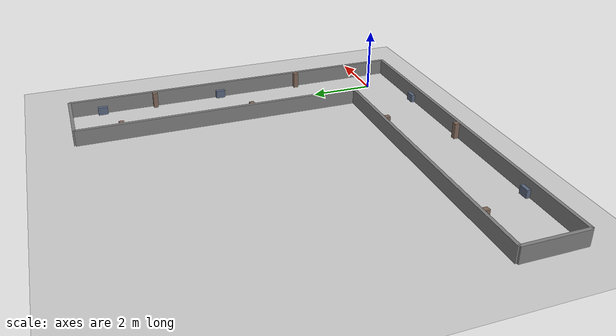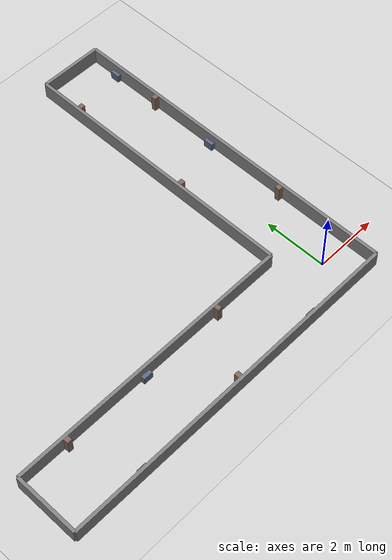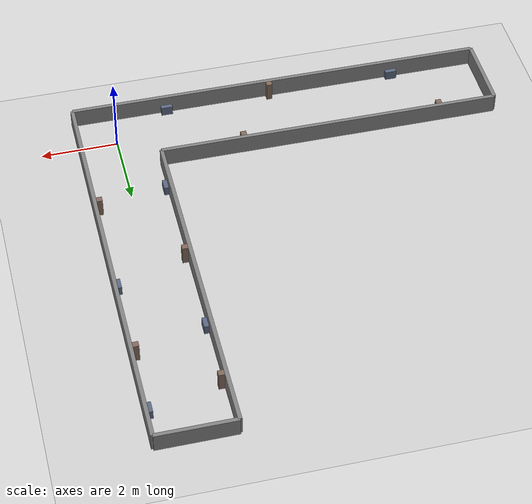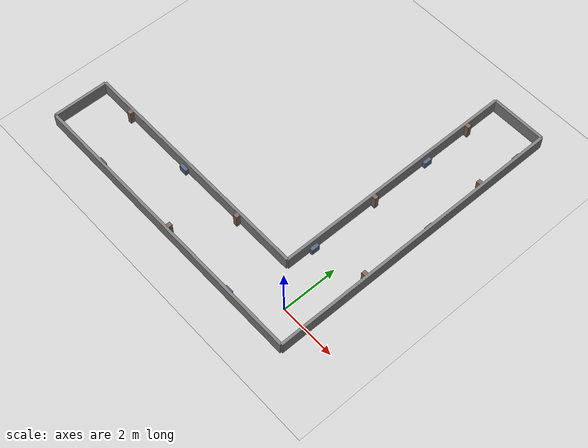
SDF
<?xml version="1.0" ?>
<sdf version="1.6">
  <world name="default">
    <plugin filename="libignition-gazebo-physics-system.so" name="ignition::gazebo::systems::Physics"/>
    <plugin filename="libignition-gazebo-user-commands-system.so" name="ignition::gazebo::systems::UserCommands"/>
    <plugin filename="libignition-gazebo-scene-broadcaster-system.so" name="ignition::gazebo::systems::SceneBroadcaster"/>
    <plugin filename="libignition-gazebo-imu-system.so" name="ignition::gazebo::systems::Imu"/>
    <plugin filename="libignition-gazebo-sensors-system.so" name="ignition::gazebo::systems::Sensors">
      <render_engine>ogre2</render_engine>
    </plugin>

    <light name="sun" type="directional">
      <pose>0 0 10 0 0.5 0</pose>
      <diffuse>1 1 1 1</diffuse>
      <specular>1 1 1 1</specular>
      <direction>-1 -1 -1</direction>
      <cast_shadows>true</cast_shadows>
    </light>

    <model name="ground_plane">
      <static>true</static>
      <link name="link">
        <collision name="collision">
          <geometry><plane><normal>0 0 1</normal><size>50 50</size></plane></geometry>
          <surface><friction><ode><mu>100</mu><mu2>50</mu2></ode></friction></surface>
        </collision>
        <visual name="visual">
          <geometry><plane><normal>0 0 1</normal><size>50 50</size></plane></geometry>
          <material>
            <ambient>0.8 0.8 0.8 1</ambient>
            <diffuse>0.8 0.8 0.8 1</diffuse>
            <specular>0.1 0.1 0.1 1</specular>
          </material>
        </visual>
      </link>
    </model>

    <!-- BOTTOM WALL: y=-1, full width from x=-10 to x=+1 -->
    <model name="wall_bottom">
      <static>true</static>
      <pose>-4.5 -1.0 0.25 0 0 0</pose>
      <link name="link">
        <collision name="collision">
          <geometry><box><size>11.0 0.1 0.5</size></box></geometry>
        </collision>
        <visual name="visual">
          <geometry><box><size>11.0 0.1 0.5</size></box></geometry>
          <material>
            <ambient>0.3 0.3 0.3 1</ambient>
            <diffuse>0.5 0.5 0.5 1</diffuse>
            <specular>0.1 0.1 0.1 1</specular>
          </material>
        </visual>
      </link>
    </model>

    <!-- RIGHT WALL: x=+1, full height from y=-1 to y=+10 -->
    <model name="wall_right">
      <static>true</static>
      <pose>1.0 4.5 0.25 0 0 0</pose>
      <link name="link">
        <collision name="collision">
          <geometry><box><size>0.1 11.0 0.5</size></box></geometry>
        </collision>
        <visual name="visual">
          <geometry><box><size>0.1 11.0 0.5</size></box></geometry>
          <material>
            <ambient>0.3 0.3 0.3 1</ambient>
            <diffuse>0.5 0.5 0.5 1</diffuse>
            <specular>0.1 0.1 0.1 1</specular>
          </material>
        </visual>
      </link>
    </model>

    <!-- TOP-LEFT WALL: y=+1, from x=-10 to x=-1 (outer wall of horiz leg, stops at inner corner) -->
    <model name="wall_top_left">
      <static>true</static>
      <pose>-5.5 1.0 0.25 0 0 0</pose>
      <link name="link">
        <collision name="collision">
          <geometry><box><size>9.0 0.1 0.5</size></box></geometry>
        </collision>
        <visual name="visual">
          <geometry><box><size>9.0 0.1 0.5</size></box></geometry>
          <material>
            <ambient>0.3 0.3 0.3 1</ambient>
            <diffuse>0.5 0.5 0.5 1</diffuse>
            <specular>0.1 0.1 0.1 1</specular>
          </material>
        </visual>
      </link>
    </model>

    <!-- LEFT-UPPER WALL: x=-1, from y=+1 to y=+10 (inner wall of vert leg, starts at inner corner) -->
    <model name="wall_left_upper">
      <static>true</static>
      <pose>-1.0 5.5 0.25 0 0 0</pose>
      <link name="link">
        <collision name="collision">
          <geometry><box><size>0.1 9.0 0.5</size></box></geometry>
        </collision>
        <visual name="visual">
          <geometry><box><size>0.1 9.0 0.5</size></box></geometry>
          <material>
            <ambient>0.3 0.3 0.3 1</ambient>
            <diffuse>0.5 0.5 0.5 1</diffuse>
            <specular>0.1 0.1 0.1 1</specular>
          </material>
        </visual>
      </link>
    </model>

    <!-- WEST END CAP: x=-10, from y=-1 to y=+1 -->
    <model name="wall_west">
      <static>true</static>
      <pose>-10.0 0 0.25 0 0 0</pose>
      <link name="link">
        <collision name="collision">
          <geometry><box><size>0.1 2.0 0.5</size></box></geometry>
        </collision>
        <visual name="visual">
          <geometry><box><size>0.1 2.0 0.5</size></box></geometry>
          <material>
            <ambient>0.3 0.3 0.3 1</ambient>
            <diffuse>0.5 0.5 0.5 1</diffuse>
            <specular>0.1 0.1 0.1 1</specular>
          </material>
        </visual>
      </link>
    </model>

    <!-- NORTH END CAP: y=+10, from x=-1 to x=+1 -->
    <model name="wall_north_end">
      <static>true</static>
      <pose>0 10.0 0.25 0 0 0</pose>
      <link name="link">
        <collision name="collision">
          <geometry><box><size>2.0 0.1 0.5</size></box></geometry>
        </collision>
        <visual name="visual">
          <geometry><box><size>2.0 0.1 0.5</size></box></geometry>
          <material>
            <ambient>0.3 0.3 0.3 1</ambient>
            <diffuse>0.5 0.5 0.5 1</diffuse>
            <specular>0.1 0.1 0.1 1</specular>
          </material>
        </visual>
      </link>
    </model>

    <!-- ===== Wall-mounted features for LiDAR/SLAM scan matching ===== -->

    <!-- Features on wall_top_left (y=+1 inner face, protrude toward -y): y=0.875 -->
    <model name="feat_1">
      <static>true</static>
      <pose>-8.5 0.875 0.25 0 0 0</pose>
      <link name="link">
        <collision name="collision"><geometry><box><size>0.15 0.15 0.5</size></box></geometry></collision>
        <visual name="visual">
          <geometry><box><size>0.15 0.15 0.5</size></box></geometry>
          <material><ambient>0.4 0.3 0.25 1</ambient><diffuse>0.5 0.4 0.35 1</diffuse></material>
        </visual>
      </link>
    </model>
    <model name="feat_2">
      <static>true</static>
      <pose>-5.8 0.89 0.125 0 0 0</pose>
      <link name="link">
        <collision name="collision"><geometry><box><size>0.3 0.12 0.25</size></box></geometry></collision>
        <visual name="visual">
          <geometry><box><size>0.3 0.12 0.25</size></box></geometry>
          <material><ambient>0.25 0.3 0.4 1</ambient><diffuse>0.35 0.4 0.5 1</diffuse></material>
        </visual>
      </link>
    </model>
    <model name="feat_3">
      <static>true</static>
      <pose>-3.2 0.875 0.25 0 0 0</pose>
      <link name="link">
        <collision name="collision"><geometry><box><size>0.15 0.15 0.5</size></box></geometry></collision>
        <visual name="visual">
          <geometry><box><size>0.15 0.15 0.5</size></box></geometry>
          <material><ambient>0.4 0.3 0.25 1</ambient><diffuse>0.5 0.4 0.35 1</diffuse></material>
        </visual>
      </link>
    </model>

    <!-- Features on wall_bottom (y=-1 inner face, protrude toward +y): y=-0.875 -->
    <model name="feat_4">
      <static>true</static>
      <pose>-7.7 -0.89 0.125 0 0 0</pose>
      <link name="link">
        <collision name="collision"><geometry><box><size>0.3 0.12 0.25</size></box></geometry></collision>
        <visual name="visual">
          <geometry><box><size>0.3 0.12 0.25</size></box></geometry>
          <material><ambient>0.25 0.3 0.4 1</ambient><diffuse>0.35 0.4 0.5 1</diffuse></material>
        </visual>
      </link>
    </model>
    <model name="feat_5">
      <static>true</static>
      <pose>-4.3 -0.875 0.25 0 0 0</pose>
      <link name="link">
        <collision name="collision"><geometry><box><size>0.15 0.15 0.5</size></box></geometry></collision>
        <visual name="visual">
          <geometry><box><size>0.15 0.15 0.5</size></box></geometry>
          <material><ambient>0.4 0.3 0.25 1</ambient><diffuse>0.5 0.4 0.35 1</diffuse></material>
        </visual>
      </link>
    </model>
    <model name="feat_6">
      <static>true</static>
      <pose>-1.5 -0.89 0.125 0 0 0</pose>
      <link name="link">
        <collision name="collision"><geometry><box><size>0.3 0.12 0.25</size></box></geometry></collision>
        <visual name="visual">
          <geometry><box><size>0.3 0.12 0.25</size></box></geometry>
          <material><ambient>0.25 0.3 0.4 1</ambient><diffuse>0.35 0.4 0.5 1</diffuse></material>
        </visual>
      </link>
    </model>

    <!-- Features on wall_right (x=+1 inner face, protrude toward -x): x=0.875 -->
    <model name="feat_7">
      <static>true</static>
      <pose>0.875 2.4 0.25 0 0 0</pose>
      <link name="link">
        <collision name="collision"><geometry><box><size>0.15 0.15 0.5</size></box></geometry></collision>
        <visual name="visual">
          <geometry><box><size>0.15 0.15 0.5</size></box></geometry>
          <material><ambient>0.4 0.3 0.25 1</ambient><diffuse>0.5 0.4 0.35 1</diffuse></material>
        </visual>
      </link>
    </model>
    <model name="feat_8">
      <static>true</static>
      <pose>0.89 5.1 0.125 0 0 0</pose>
      <link name="link">
        <collision name="collision"><geometry><box><size>0.12 0.3 0.25</size></box></geometry></collision>
        <visual name="visual">
          <geometry><box><size>0.12 0.3 0.25</size></box></geometry>
          <material><ambient>0.25 0.3 0.4 1</ambient><diffuse>0.35 0.4 0.5 1</diffuse></material>
        </visual>
      </link>
    </model>
    <model name="feat_9">
      <static>true</static>
      <pose>0.875 7.3 0.25 0 0 0</pose>
      <link name="link">
        <collision name="collision"><geometry><box><size>0.15 0.15 0.5</size></box></geometry></collision>
        <visual name="visual">
          <geometry><box><size>0.15 0.15 0.5</size></box></geometry>
          <material><ambient>0.4 0.3 0.25 1</ambient><diffuse>0.5 0.4 0.35 1</diffuse></material>
        </visual>
      </link>
    </model>
    <model name="feat_10">
      <static>true</static>
      <pose>0.89 9.0 0.125 0 0 0</pose>
      <link name="link">
        <collision name="collision"><geometry><box><size>0.12 0.3 0.25</size></box></geometry></collision>
        <visual name="visual">
          <geometry><box><size>0.12 0.3 0.25</size></box></geometry>
          <material><ambient>0.25 0.3 0.4 1</ambient><diffuse>0.35 0.4 0.5 1</diffuse></material>
        </visual>
      </link>
    </model>

    <!-- Features on wall_left_upper (x=-1 inner face, protrude toward +x): x=-0.875 -->
    <model name="feat_11">
      <static>true</static>
      <pose>-0.89 2.0 0.125 0 0 0</pose>
      <link name="link">
        <collision name="collision"><geometry><box><size>0.12 0.3 0.25</size></box></geometry></collision>
        <visual name="visual">
          <geometry><box><size>0.12 0.3 0.25</size></box></geometry>
          <material><ambient>0.25 0.3 0.4 1</ambient><diffuse>0.35 0.4 0.5 1</diffuse></material>
        </visual>
      </link>
    </model>
    <model name="feat_12">
      <static>true</static>
      <pose>-0.875 4.5 0.25 0 0 0</pose>
      <link name="link">
        <collision name="collision"><geometry><box><size>0.15 0.15 0.5</size></box></geometry></collision>
        <visual name="visual">
          <geometry><box><size>0.15 0.15 0.5</size></box></geometry>
          <material><ambient>0.4 0.3 0.25 1</ambient><diffuse>0.5 0.4 0.35 1</diffuse></material>
        </visual>
      </link>
    </model>
    <model name="feat_13">
      <static>true</static>
      <pose>-0.89 6.8 0.125 0 0 0</pose>
      <link name="link">
        <collision name="collision"><geometry><box><size>0.12 0.3 0.25</size></box></geometry></collision>
        <visual name="visual">
          <geometry><box><size>0.12 0.3 0.25</size></box></geometry>
          <material><ambient>0.25 0.3 0.4 1</ambient><diffuse>0.35 0.4 0.5 1</diffuse></material>
        </visual>
      </link>
    </model>
    <model name="feat_14">
      <static>true</static>
      <pose>-0.875 8.6 0.25 0 0 0</pose>
      <link name="link">
        <collision name="collision"><geometry><box><size>0.15 0.15 0.5</size></box></geometry></collision>
        <visual name="visual">
          <geometry><box><size>0.15 0.15 0.5</size></box></geometry>
          <material><ambient>0.4 0.3 0.25 1</ambient><diffuse>0.5 0.4 0.35 1</diffuse></material>
        </visual>
      </link>
    </model>
  </world>
</sdf>
